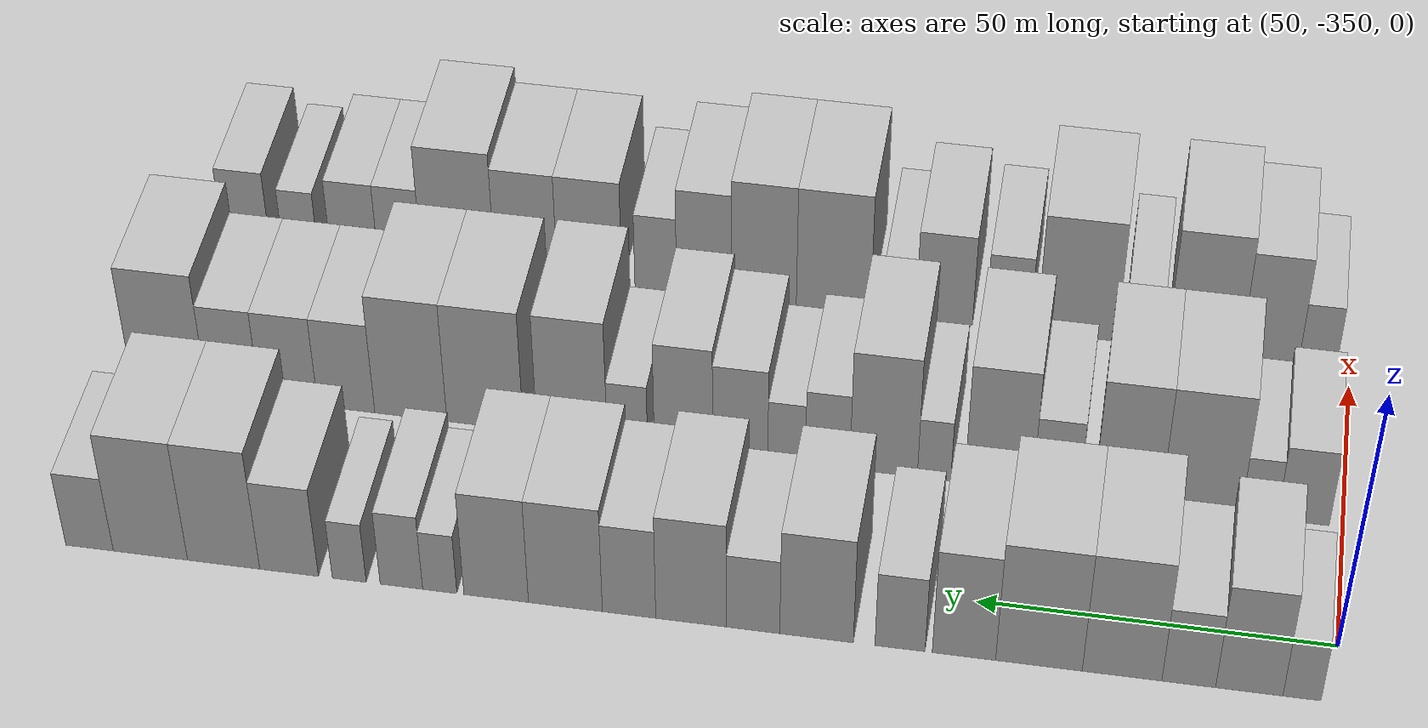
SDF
<sdf version="1.6">
 <world name="default">
  <model name="building_1">
   <static>1</static>
   <pose>50.0000 -345.4279 0 0.000000 0.000000 0.000000</pose>
   <link name="link">
    <pose>0 0 6.00 0 0 0</pose>
    <collision name="collision"><geometry><box><size>20.0000 5.1441 12.0000</size></box></geometry></collision>
    <visual name="visual">
     <cast_shadows>0</cast_shadows>
     <geometry><box><size>20.0000 5.1441 12.0000</size></box></geometry>
     <material>
      <script>
       <uri>model://HANNAS_wall/materials/scripts</uri>
       <uri>model://HANNAS_wall/materials/textures</uri>
       <name>vrc/HANNAS_wall</name>
      </script>
     </material>
    </visual>
   </link>
  </model>
  <model name="building_2">
   <static>1</static>
   <pose>50.0000 -338.2973 0 0.000000 0.000000 0.000000</pose>
   <link name="link">
    <pose>0 0 10.50 0 0 0</pose>
    <collision name="collision"><geometry><box><size>20.0000 9.1171 21.0000</size></box></geometry></collision>
    <visual name="visual">
     <cast_shadows>0</cast_shadows>
     <geometry><box><size>20.0000 9.1171 21.0000</size></box></geometry>
     <material>
      <script>
       <uri>model://HANNAS_wall/materials/scripts</uri>
       <uri>model://HANNAS_wall/materials/textures</uri>
       <name>vrc/HANNAS_wall</name>
      </script>
     </material>
    </visual>
   </link>
  </model>
  <model name="building_3">
   <static>1</static>
   <pose>50.0000 -330.0822 0 0.000000 0.000000 0.000000</pose>
   <link name="link">
    <pose>0 0 7.50 0 0 0</pose>
    <collision name="collision"><geometry><box><size>20.0000 7.3132 15.0000</size></box></geometry></collision>
    <visual name="visual">
     <cast_shadows>0</cast_shadows>
     <geometry><box><size>20.0000 7.3132 15.0000</size></box></geometry>
     <material>
      <script>
       <uri>model://HANNAS_wall/materials/scripts</uri>
       <uri>model://HANNAS_wall/materials/textures</uri>
       <name>vrc/HANNAS_wall</name>
      </script>
     </material>
    </visual>
   </link>
  </model>
  <model name="building_4">
   <static>1</static>
   <pose>50.0000 -320.9923 0 0.000000 0.000000 0.000000</pose>
   <link name="link">
    <pose>0 0 12.00 0 0 0</pose>
    <collision name="collision"><geometry><box><size>20.0000 10.8666 24.0000</size></box></geometry></collision>
    <visual name="visual">
     <cast_shadows>0</cast_shadows>
     <geometry><box><size>20.0000 10.8666 24.0000</size></box></geometry>
     <material>
      <script>
       <uri>model://HANNAS_wall/materials/scripts</uri>
       <uri>model://HANNAS_wall/materials/textures</uri>
       <name>vrc/HANNAS_wall</name>
      </script>
     </material>
    </visual>
   </link>
  </model>
  <model name="building_5">
   <static>1</static>
   <pose>50.0000 -309.6062 0 0.000000 0.000000 0.000000</pose>
   <link name="link">
    <pose>0 0 12.00 0 0 0</pose>
    <collision name="collision"><geometry><box><size>20.0000 11.9056 24.0000</size></box></geometry></collision>
    <visual name="visual">
     <cast_shadows>0</cast_shadows>
     <geometry><box><size>20.0000 11.9056 24.0000</size></box></geometry>
     <material>
      <script>
       <uri>model://HANNAS_wall/materials/scripts</uri>
       <uri>model://HANNAS_wall/materials/textures</uri>
       <name>vrc/HANNAS_wall</name>
      </script>
     </material>
    </visual>
   </link>
  </model>
  <model name="building_6">
   <static>1</static>
   <pose>50.0000 -299.2852 0 0.000000 0.000000 0.000000</pose>
   <link name="link">
    <pose>0 0 10.50 0 0 0</pose>
    <collision name="collision"><geometry><box><size>20.0000 8.7364 21.0000</size></box></geometry></collision>
    <visual name="visual">
     <cast_shadows>0</cast_shadows>
     <geometry><box><size>20.0000 8.7364 21.0000</size></box></geometry>
     <material>
      <script>
       <uri>model://HANNAS_wall/materials/scripts</uri>
       <uri>model://HANNAS_wall/materials/textures</uri>
       <name>vrc/HANNAS_wall</name>
      </script>
     </material>
    </visual>
   </link>
  </model>
  <model name="building_7">
   <static>1</static>
   <pose>50.0000 -290.4478 0 0.000000 0.000000 0.000000</pose>
   <link name="link">
    <pose>0 0 7.50 0 0 0</pose>
    <collision name="collision"><geometry><box><size>20.0000 6.9384 15.0000</size></box></geometry></collision>
    <visual name="visual">
     <cast_shadows>0</cast_shadows>
     <geometry><box><size>20.0000 6.9384 15.0000</size></box></geometry>
     <material>
      <script>
       <uri>model://HANNAS_wall/materials/scripts</uri>
       <uri>model://HANNAS_wall/materials/textures</uri>
       <name>vrc/HANNAS_wall</name>
      </script>
     </material>
    </visual>
   </link>
  </model>
  <model name="building_8">
   <static>1</static>
   <pose>50.0000 -278.8510 0 0.000000 0.000000 0.000000</pose>
   <link name="link">
    <pose>0 0 10.50 0 0 0</pose>
    <collision name="collision"><geometry><box><size>20.0000 10.2552 21.0000</size></box></geometry></collision>
    <visual name="visual">
     <cast_shadows>0</cast_shadows>
     <geometry><box><size>20.0000 10.2552 21.0000</size></box></geometry>
     <material>
      <script>
       <uri>model://HANNAS_wall/materials/scripts</uri>
       <uri>model://HANNAS_wall/materials/textures</uri>
       <name>vrc/HANNAS_wall</name>
      </script>
     </material>
    </visual>
   </link>
  </model>
  <model name="building_9">
   <static>1</static>
   <pose>50.0000 -269.9844 0 0.000000 0.000000 0.000000</pose>
   <link name="link">
    <pose>0 0 7.50 0 0 0</pose>
    <collision name="collision"><geometry><box><size>20.0000 7.4780 15.0000</size></box></geometry></collision>
    <visual name="visual">
     <cast_shadows>0</cast_shadows>
     <geometry><box><size>20.0000 7.4780 15.0000</size></box></geometry>
     <material>
      <script>
       <uri>model://HANNAS_wall/materials/scripts</uri>
       <uri>model://HANNAS_wall/materials/textures</uri>
       <name>vrc/HANNAS_wall</name>
      </script>
     </material>
    </visual>
   </link>
  </model>
  <model name="building_10">
   <static>1</static>
   <pose>50.0000 -261.2865 0 0.000000 0.000000 0.000000</pose>
   <link name="link">
    <pose>0 0 10.50 0 0 0</pose>
    <collision name="collision"><geometry><box><size>20.0000 9.9178 21.0000</size></box></geometry></collision>
    <visual name="visual">
     <cast_shadows>0</cast_shadows>
     <geometry><box><size>20.0000 9.9178 21.0000</size></box></geometry>
     <material>
      <script>
       <uri>model://HANNAS_wall/materials/scripts</uri>
       <uri>model://HANNAS_wall/materials/textures</uri>
       <name>vrc/HANNAS_wall</name>
      </script>
     </material>
    </visual>
   </link>
  </model>
  <model name="building_11">
   <static>1</static>
   <pose>50.0000 -252.5657 0 0.000000 0.000000 0.000000</pose>
   <link name="link">
    <pose>0 0 9.00 0 0 0</pose>
    <collision name="collision"><geometry><box><size>20.0000 7.5238 18.0000</size></box></geometry></collision>
    <visual name="visual">
     <cast_shadows>0</cast_shadows>
     <geometry><box><size>20.0000 7.5238 18.0000</size></box></geometry>
     <material>
      <script>
       <uri>model://HANNAS_wall/materials/scripts</uri>
       <uri>model://HANNAS_wall/materials/textures</uri>
       <name>vrc/HANNAS_wall</name>
      </script>
     </material>
    </visual>
   </link>
  </model>
  <model name="building_12">
   <static>1</static>
   <pose>50.0000 -243.5626 0 0.000000 0.000000 0.000000</pose>
   <link name="link">
    <pose>0 0 10.50 0 0 0</pose>
    <collision name="collision"><geometry><box><size>20.0000 10.4824 21.0000</size></box></geometry></collision>
    <visual name="visual">
     <cast_shadows>0</cast_shadows>
     <geometry><box><size>20.0000 10.4824 21.0000</size></box></geometry>
     <material>
      <script>
       <uri>model://HANNAS_wall/materials/scripts</uri>
       <uri>model://HANNAS_wall/materials/textures</uri>
       <name>vrc/HANNAS_wall</name>
      </script>
     </material>
    </visual>
   </link>
  </model>
  <model name="building_13">
   <static>1</static>
   <pose>50.0000 -233.7275 0 0.000000 0.000000 0.000000</pose>
   <link name="link">
    <pose>0 0 10.50 0 0 0</pose>
    <collision name="collision"><geometry><box><size>20.0000 9.1879 21.0000</size></box></geometry></collision>
    <visual name="visual">
     <cast_shadows>0</cast_shadows>
     <geometry><box><size>20.0000 9.1879 21.0000</size></box></geometry>
     <material>
      <script>
       <uri>model://HANNAS_wall/materials/scripts</uri>
       <uri>model://HANNAS_wall/materials/textures</uri>
       <name>vrc/HANNAS_wall</name>
      </script>
     </material>
    </visual>
   </link>
  </model>
  <model name="building_14">
   <static>1</static>
   <pose>50.0000 -225.6845 0 0.000000 0.000000 0.000000</pose>
   <link name="link">
    <pose>0 0 6.00 0 0 0</pose>
    <collision name="collision"><geometry><box><size>20.0000 4.8980 12.0000</size></box></geometry></collision>
    <visual name="visual">
     <cast_shadows>0</cast_shadows>
     <geometry><box><size>20.0000 4.8980 12.0000</size></box></geometry>
     <material>
      <script>
       <uri>model://HANNAS_wall/materials/scripts</uri>
       <uri>model://HANNAS_wall/materials/textures</uri>
       <name>vrc/HANNAS_wall</name>
      </script>
     </material>
    </visual>
   </link>
  </model>
  <model name="building_15">
   <static>1</static>
   <pose>50.0000 -220.1928 0 0.000000 0.000000 0.000000</pose>
   <link name="link">
    <pose>0 0 7.50 0 0 0</pose>
    <collision name="collision"><geometry><box><size>20.0000 6.0856 15.0000</size></box></geometry></collision>
    <visual name="visual">
     <cast_shadows>0</cast_shadows>
     <geometry><box><size>20.0000 6.0856 15.0000</size></box></geometry>
     <material>
      <script>
       <uri>model://HANNAS_wall/materials/scripts</uri>
       <uri>model://HANNAS_wall/materials/textures</uri>
       <name>vrc/HANNAS_wall</name>
      </script>
     </material>
    </visual>
   </link>
  </model>
  <model name="building_16">
   <static>1</static>
   <pose>50.0000 -212.7110 0 0.000000 0.000000 0.000000</pose>
   <link name="link">
    <pose>0 0 6.00 0 0 0</pose>
    <collision name="collision"><geometry><box><size>20.0000 4.8779 12.0000</size></box></geometry></collision>
    <visual name="visual">
     <cast_shadows>0</cast_shadows>
     <geometry><box><size>20.0000 4.8779 12.0000</size></box></geometry>
     <material>
      <script>
       <uri>model://HANNAS_wall/materials/scripts</uri>
       <uri>model://HANNAS_wall/materials/textures</uri>
       <name>vrc/HANNAS_wall</name>
      </script>
     </material>
    </visual>
   </link>
  </model>
  <model name="building_17">
   <static>1</static>
   <pose>50.0000 -204.0332 0 0.000000 0.000000 0.000000</pose>
   <link name="link">
    <pose>0 0 9.00 0 0 0</pose>
    <collision name="collision"><geometry><box><size>20.0000 8.4778 18.0000</size></box></geometry></collision>
    <visual name="visual">
     <cast_shadows>0</cast_shadows>
     <geometry><box><size>20.0000 8.4778 18.0000</size></box></geometry>
     <material>
      <script>
       <uri>model://HANNAS_wall/materials/scripts</uri>
       <uri>model://HANNAS_wall/materials/textures</uri>
       <name>vrc/HANNAS_wall</name>
      </script>
     </material>
    </visual>
   </link>
  </model>
  <model name="building_18">
   <static>1</static>
   <pose>50.0000 -194.5621 0 0.000000 0.000000 0.000000</pose>
   <link name="link">
    <pose>0 0 12.00 0 0 0</pose>
    <collision name="collision"><geometry><box><size>20.0000 10.4643 24.0000</size></box></geometry></collision>
    <visual name="visual">
     <cast_shadows>0</cast_shadows>
     <geometry><box><size>20.0000 10.4643 24.0000</size></box></geometry>
     <material>
      <script>
       <uri>model://HANNAS_wall/materials/scripts</uri>
       <uri>model://HANNAS_wall/materials/textures</uri>
       <name>vrc/HANNAS_wall</name>
      </script>
     </material>
    </visual>
   </link>
  </model>
  <model name="building_19">
   <static>1</static>
   <pose>50.0000 -183.9129 0 0.000000 0.000000 0.000000</pose>
   <link name="link">
    <pose>0 0 12.00 0 0 0</pose>
    <collision name="collision"><geometry><box><size>20.0000 10.8343 24.0000</size></box></geometry></collision>
    <visual name="visual">
     <cast_shadows>0</cast_shadows>
     <geometry><box><size>20.0000 10.8343 24.0000</size></box></geometry>
     <material>
      <script>
       <uri>model://HANNAS_wall/materials/scripts</uri>
       <uri>model://HANNAS_wall/materials/textures</uri>
       <name>vrc/HANNAS_wall</name>
      </script>
     </material>
    </visual>
   </link>
  </model>
  <model name="building_20">
   <static>1</static>
   <pose>50.0000 -175.0289 0 0.000000 0.000000 0.000000</pose>
   <link name="link">
    <pose>0 0 7.50 0 0 0</pose>
    <collision name="collision"><geometry><box><size>20.0000 6.9336 15.0000</size></box></geometry></collision>
    <visual name="visual">
     <cast_shadows>0</cast_shadows>
     <geometry><box><size>20.0000 6.9336 15.0000</size></box></geometry>
     <material>
      <script>
       <uri>model://HANNAS_wall/materials/scripts</uri>
       <uri>model://HANNAS_wall/materials/textures</uri>
       <name>vrc/HANNAS_wall</name>
      </script>
     </material>
    </visual>
   </link>
  </model>
  <model name="building_82">
   <static>1</static>
   <pose>82.0000 -344.3086 0 0.000000 0.000000 0.000000</pose>
   <link name="link">
    <pose>0 0 7.50 0 0 0</pose>
    <collision name="collision"><geometry><box><size>20.0000 7.3829 15.0000</size></box></geometry></collision>
    <visual name="visual">
     <cast_shadows>0</cast_shadows>
     <geometry><box><size>20.0000 7.3829 15.0000</size></box></geometry>
     <material>
      <script>
       <uri>model://HANNAS_wall/materials/scripts</uri>
       <uri>model://HANNAS_wall/materials/textures</uri>
       <name>vrc/HANNAS_wall</name>
      </script>
     </material>
    </visual>
   </link>
  </model>
  <model name="building_83">
   <static>1</static>
   <pose>82.0000 -338.0447 0 0.000000 0.000000 0.000000</pose>
   <link name="link">
    <pose>0 0 6.00 0 0 0</pose>
    <collision name="collision"><geometry><box><size>20.0000 5.1449 12.0000</size></box></geometry></collision>
    <visual name="visual">
     <cast_shadows>0</cast_shadows>
     <geometry><box><size>20.0000 5.1449 12.0000</size></box></geometry>
     <material>
      <script>
       <uri>model://HANNAS_wall/materials/scripts</uri>
       <uri>model://HANNAS_wall/materials/textures</uri>
       <name>vrc/HANNAS_wall</name>
      </script>
     </material>
    </visual>
   </link>
  </model>
  <model name="building_84">
   <static>1</static>
   <pose>82.0000 -329.7671 0 0.000000 0.000000 0.000000</pose>
   <link name="link">
    <pose>0 0 12.00 0 0 0</pose>
    <collision name="collision"><geometry><box><size>20.0000 11.4103 24.0000</size></box></geometry></collision>
    <visual name="visual">
     <cast_shadows>0</cast_shadows>
     <geometry><box><size>20.0000 11.4103 24.0000</size></box></geometry>
     <material>
      <script>
       <uri>model://HANNAS_wall/materials/scripts</uri>
       <uri>model://HANNAS_wall/materials/textures</uri>
       <name>vrc/HANNAS_wall</name>
      </script>
     </material>
    </visual>
   </link>
  </model>
  <model name="building_85">
   <static>1</static>
   <pose>82.0000 -319.2539 0 0.000000 0.000000 0.000000</pose>
   <link name="link">
    <pose>0 0 12.00 0 0 0</pose>
    <collision name="collision"><geometry><box><size>20.0000 9.6162 24.0000</size></box></geometry></collision>
    <visual name="visual">
     <cast_shadows>0</cast_shadows>
     <geometry><box><size>20.0000 9.6162 24.0000</size></box></geometry>
     <material>
      <script>
       <uri>model://HANNAS_wall/materials/scripts</uri>
       <uri>model://HANNAS_wall/materials/textures</uri>
       <name>vrc/HANNAS_wall</name>
      </script>
     </material>
    </visual>
   </link>
  </model>
  <model name="building_86">
   <static>1</static>
   <pose>82.0000 -309.0598 0 0.000000 0.000000 0.000000</pose>
   <link name="link">
    <pose>0 0 7.50 0 0 0</pose>
    <collision name="collision"><geometry><box><size>20.0000 6.7721 15.0000</size></box></geometry></collision>
    <visual name="visual">
     <cast_shadows>0</cast_shadows>
     <geometry><box><size>20.0000 6.7721 15.0000</size></box></geometry>
     <material>
      <script>
       <uri>model://HANNAS_wall/materials/scripts</uri>
       <uri>model://HANNAS_wall/materials/textures</uri>
       <name>vrc/HANNAS_wall</name>
      </script>
     </material>
    </visual>
   </link>
  </model>
  <model name="building_87">
   <static>1</static>
   <pose>82.0000 -300.7603 0 0.000000 0.000000 0.000000</pose>
   <link name="link">
    <pose>0 0 12.00 0 0 0</pose>
    <collision name="collision"><geometry><box><size>20.0000 9.8269 24.0000</size></box></geometry></collision>
    <visual name="visual">
     <cast_shadows>0</cast_shadows>
     <geometry><box><size>20.0000 9.8269 24.0000</size></box></geometry>
     <material>
      <script>
       <uri>model://HANNAS_wall/materials/scripts</uri>
       <uri>model://HANNAS_wall/materials/textures</uri>
       <name>vrc/HANNAS_wall</name>
      </script>
     </material>
    </visual>
   </link>
  </model>
  <model name="building_88">
   <static>1</static>
   <pose>82.0000 -291.4239 0 0.000000 0.000000 0.000000</pose>
   <link name="link">
    <pose>0 0 6.00 0 0 0</pose>
    <collision name="collision"><geometry><box><size>20.0000 4.8460 12.0000</size></box></geometry></collision>
    <visual name="visual">
     <cast_shadows>0</cast_shadows>
     <geometry><box><size>20.0000 4.8460 12.0000</size></box></geometry>
     <material>
      <script>
       <uri>model://HANNAS_wall/materials/scripts</uri>
       <uri>model://HANNAS_wall/materials/textures</uri>
       <name>vrc/HANNAS_wall</name>
      </script>
     </material>
    </visual>
   </link>
  </model>
  <model name="building_89">
   <static>1</static>
   <pose>82.0000 -284.0865 0 0.000000 0.000000 0.000000</pose>
   <link name="link">
    <pose>0 0 12.00 0 0 0</pose>
    <collision name="collision"><geometry><box><size>20.0000 9.8287 24.0000</size></box></geometry></collision>
    <visual name="visual">
     <cast_shadows>0</cast_shadows>
     <geometry><box><size>20.0000 9.8287 24.0000</size></box></geometry>
     <material>
      <script>
       <uri>model://HANNAS_wall/materials/scripts</uri>
       <uri>model://HANNAS_wall/materials/textures</uri>
       <name>vrc/HANNAS_wall</name>
      </script>
     </material>
    </visual>
   </link>
  </model>
  <model name="building_90">
   <static>1</static>
   <pose>82.0000 -275.9229 0 0.000000 0.000000 0.000000</pose>
   <link name="link">
    <pose>0 0 7.50 0 0 0</pose>
    <collision name="collision"><geometry><box><size>20.0000 6.4985 15.0000</size></box></geometry></collision>
    <visual name="visual">
     <cast_shadows>0</cast_shadows>
     <geometry><box><size>20.0000 6.4985 15.0000</size></box></geometry>
     <material>
      <script>
       <uri>model://HANNAS_wall/materials/scripts</uri>
       <uri>model://HANNAS_wall/materials/textures</uri>
       <name>vrc/HANNAS_wall</name>
      </script>
     </material>
    </visual>
   </link>
  </model>
  <model name="building_91">
   <static>1</static>
   <pose>82.0000 -269.9302 0 0.000000 0.000000 0.000000</pose>
   <link name="link">
    <pose>0 0 6.00 0 0 0</pose>
    <collision name="collision"><geometry><box><size>20.0000 5.4868 12.0000</size></box></geometry></collision>
    <visual name="visual">
     <cast_shadows>0</cast_shadows>
     <geometry><box><size>20.0000 5.4868 12.0000</size></box></geometry>
     <material>
      <script>
       <uri>model://HANNAS_wall/materials/scripts</uri>
       <uri>model://HANNAS_wall/materials/textures</uri>
       <name>vrc/HANNAS_wall</name>
      </script>
     </material>
    </visual>
   </link>
  </model>
  <model name="building_92">
   <static>1</static>
   <pose>82.0000 -263.1394 0 0.000000 0.000000 0.000000</pose>
   <link name="link">
    <pose>0 0 9.00 0 0 0</pose>
    <collision name="collision"><geometry><box><size>20.0000 8.0948 18.0000</size></box></geometry></collision>
    <visual name="visual">
     <cast_shadows>0</cast_shadows>
     <geometry><box><size>20.0000 8.0948 18.0000</size></box></geometry>
     <material>
      <script>
       <uri>model://HANNAS_wall/materials/scripts</uri>
       <uri>model://HANNAS_wall/materials/textures</uri>
       <name>vrc/HANNAS_wall</name>
      </script>
     </material>
    </visual>
   </link>
  </model>
  <model name="building_93">
   <static>1</static>
   <pose>82.0000 -254.7932 0 0.000000 0.000000 0.000000</pose>
   <link name="link">
    <pose>0 0 10.50 0 0 0</pose>
    <collision name="collision"><geometry><box><size>20.0000 8.5977 21.0000</size></box></geometry></collision>
    <visual name="visual">
     <cast_shadows>0</cast_shadows>
     <geometry><box><size>20.0000 8.5977 21.0000</size></box></geometry>
     <material>
      <script>
       <uri>model://HANNAS_wall/materials/scripts</uri>
       <uri>model://HANNAS_wall/materials/textures</uri>
       <name>vrc/HANNAS_wall</name>
      </script>
     </material>
    </visual>
   </link>
  </model>
  <model name="building_94">
   <static>1</static>
   <pose>82.0000 -246.5058 0 0.000000 0.000000 0.000000</pose>
   <link name="link">
    <pose>0 0 6.00 0 0 0</pose>
    <collision name="collision"><geometry><box><size>20.0000 5.9772 12.0000</size></box></geometry></collision>
    <visual name="visual">
     <cast_shadows>0</cast_shadows>
     <geometry><box><size>20.0000 5.9772 12.0000</size></box></geometry>
     <material>
      <script>
       <uri>model://HANNAS_wall/materials/scripts</uri>
       <uri>model://HANNAS_wall/materials/textures</uri>
       <name>vrc/HANNAS_wall</name>
      </script>
     </material>
    </visual>
   </link>
  </model>
  <model name="building_95">
   <static>1</static>
   <pose>82.0000 -238.2991 0 0.000000 0.000000 0.000000</pose>
   <link name="link">
    <pose>0 0 12.00 0 0 0</pose>
    <collision name="collision"><geometry><box><size>20.0000 10.4362 24.0000</size></box></geometry></collision>
    <visual name="visual">
     <cast_shadows>0</cast_shadows>
     <geometry><box><size>20.0000 10.4362 24.0000</size></box></geometry>
     <material>
      <script>
       <uri>model://HANNAS_wall/materials/scripts</uri>
       <uri>model://HANNAS_wall/materials/textures</uri>
       <name>vrc/HANNAS_wall</name>
      </script>
     </material>
    </visual>
   </link>
  </model>
  <model name="building_96">
   <static>1</static>
   <pose>82.0000 -225.3558 0 0.000000 0.000000 0.000000</pose>
   <link name="link">
    <pose>0 0 12.00 0 0 0</pose>
    <collision name="collision"><geometry><box><size>20.0000 11.4505 24.0000</size></box></geometry></collision>
    <visual name="visual">
     <cast_shadows>0</cast_shadows>
     <geometry><box><size>20.0000 11.4505 24.0000</size></box></geometry>
     <material>
      <script>
       <uri>model://HANNAS_wall/materials/scripts</uri>
       <uri>model://HANNAS_wall/materials/textures</uri>
       <name>vrc/HANNAS_wall</name>
      </script>
     </material>
    </visual>
   </link>
  </model>
  <model name="building_97">
   <static>1</static>
   <pose>82.0000 -214.2096 0 0.000000 0.000000 0.000000</pose>
   <link name="link">
    <pose>0 0 12.00 0 0 0</pose>
    <collision name="collision"><geometry><box><size>20.0000 10.8418 24.0000</size></box></geometry></collision>
    <visual name="visual">
     <cast_shadows>0</cast_shadows>
     <geometry><box><size>20.0000 10.8418 24.0000</size></box></geometry>
     <material>
      <script>
       <uri>model://HANNAS_wall/materials/scripts</uri>
       <uri>model://HANNAS_wall/materials/textures</uri>
       <name>vrc/HANNAS_wall</name>
      </script>
     </material>
    </visual>
   </link>
  </model>
  <model name="building_98">
   <static>1</static>
   <pose>82.0000 -204.5007 0 0.000000 0.000000 0.000000</pose>
   <link name="link">
    <pose>0 0 9.00 0 0 0</pose>
    <collision name="collision"><geometry><box><size>20.0000 8.5760 18.0000</size></box></geometry></collision>
    <visual name="visual">
     <cast_shadows>0</cast_shadows>
     <geometry><box><size>20.0000 8.5760 18.0000</size></box></geometry>
     <material>
      <script>
       <uri>model://HANNAS_wall/materials/scripts</uri>
       <uri>model://HANNAS_wall/materials/textures</uri>
       <name>vrc/HANNAS_wall</name>
      </script>
     </material>
    </visual>
   </link>
  </model>
  <model name="building_99">
   <static>1</static>
   <pose>82.0000 -195.8501 0 0.000000 0.000000 0.000000</pose>
   <link name="link">
    <pose>0 0 9.00 0 0 0</pose>
    <collision name="collision"><geometry><box><size>20.0000 8.7252 18.0000</size></box></geometry></collision>
    <visual name="visual">
     <cast_shadows>0</cast_shadows>
     <geometry><box><size>20.0000 8.7252 18.0000</size></box></geometry>
     <material>
      <script>
       <uri>model://HANNAS_wall/materials/scripts</uri>
       <uri>model://HANNAS_wall/materials/textures</uri>
       <name>vrc/HANNAS_wall</name>
      </script>
     </material>
    </visual>
   </link>
  </model>
  <model name="building_100">
   <static>1</static>
   <pose>82.0000 -187.4548 0 0.000000 0.000000 0.000000</pose>
   <link name="link">
    <pose>0 0 9.00 0 0 0</pose>
    <collision name="collision"><geometry><box><size>20.0000 8.0653 18.0000</size></box></geometry></collision>
    <visual name="visual">
     <cast_shadows>0</cast_shadows>
     <geometry><box><size>20.0000 8.0653 18.0000</size></box></geometry>
     <material>
      <script>
       <uri>model://HANNAS_wall/materials/scripts</uri>
       <uri>model://HANNAS_wall/materials/textures</uri>
       <name>vrc/HANNAS_wall</name>
      </script>
     </material>
    </visual>
   </link>
  </model>
  <model name="building_101">
   <static>1</static>
   <pose>82.0000 -177.7040 0 0.000000 0.000000 0.000000</pose>
   <link name="link">
    <pose>0 0 12.00 0 0 0</pose>
    <collision name="collision"><geometry><box><size>20.0000 11.4364 24.0000</size></box></geometry></collision>
    <visual name="visual">
     <cast_shadows>0</cast_shadows>
     <geometry><box><size>20.0000 11.4364 24.0000</size></box></geometry>
     <material>
      <script>
       <uri>model://HANNAS_wall/materials/scripts</uri>
       <uri>model://HANNAS_wall/materials/textures</uri>
       <name>vrc/HANNAS_wall</name>
      </script>
     </material>
    </visual>
   </link>
  </model>
  <model name="building_158">
   <static>1</static>
   <pose>114.0000 -345.2093 0 0.000000 0.000000 0.000000</pose>
   <link name="link">
    <pose>0 0 6.00 0 0 0</pose>
    <collision name="collision"><geometry><box><size>20.0000 5.5814 12.0000</size></box></geometry></collision>
    <visual name="visual">
     <cast_shadows>0</cast_shadows>
     <geometry><box><size>20.0000 5.5814 12.0000</size></box></geometry>
     <material>
      <script>
       <uri>model://HANNAS_wall/materials/scripts</uri>
       <uri>model://HANNAS_wall/materials/textures</uri>
       <name>vrc/HANNAS_wall</name>
      </script>
     </material>
    </visual>
   </link>
  </model>
  <model name="building_159">
   <static>1</static>
   <pose>114.0000 -338.0819 0 0.000000 0.000000 0.000000</pose>
   <link name="link">
    <pose>0 0 10.50 0 0 0</pose>
    <collision name="collision"><geometry><box><size>20.0000 8.6734 21.0000</size></box></geometry></collision>
    <visual name="visual">
     <cast_shadows>0</cast_shadows>
     <geometry><box><size>20.0000 8.6734 21.0000</size></box></geometry>
     <material>
      <script>
       <uri>model://HANNAS_wall/materials/scripts</uri>
       <uri>model://HANNAS_wall/materials/textures</uri>
       <name>vrc/HANNAS_wall</name>
      </script>
     </material>
    </visual>
   </link>
  </model>
  <model name="building_160">
   <static>1</static>
   <pose>114.0000 -328.2507 0 0.000000 0.000000 0.000000</pose>
   <link name="link">
    <pose>0 0 12.00 0 0 0</pose>
    <collision name="collision"><geometry><box><size>20.0000 10.9888 24.0000</size></box></geometry></collision>
    <visual name="visual">
     <cast_shadows>0</cast_shadows>
     <geometry><box><size>20.0000 10.9888 24.0000</size></box></geometry>
     <material>
      <script>
       <uri>model://HANNAS_wall/materials/scripts</uri>
       <uri>model://HANNAS_wall/materials/textures</uri>
       <name>vrc/HANNAS_wall</name>
      </script>
     </material>
    </visual>
   </link>
  </model>
  <model name="building_161">
   <static>1</static>
   <pose>114.0000 -318.9845 0 0.000000 0.000000 0.000000</pose>
   <link name="link">
    <pose>0 0 6.00 0 0 0</pose>
    <collision name="collision"><geometry><box><size>20.0000 5.5436 12.0000</size></box></geometry></collision>
    <visual name="visual">
     <cast_shadows>0</cast_shadows>
     <geometry><box><size>20.0000 5.5436 12.0000</size></box></geometry>
     <material>
      <script>
       <uri>model://HANNAS_wall/materials/scripts</uri>
       <uri>model://HANNAS_wall/materials/textures</uri>
       <name>vrc/HANNAS_wall</name>
      </script>
     </material>
    </visual>
   </link>
  </model>
  <model name="building_162">
   <static>1</static>
   <pose>114.0000 -309.2181 0 0.000000 0.000000 0.000000</pose>
   <link name="link">
    <pose>0 0 12.00 0 0 0</pose>
    <collision name="collision"><geometry><box><size>20.0000 11.9893 24.0000</size></box></geometry></collision>
    <visual name="visual">
     <cast_shadows>0</cast_shadows>
     <geometry><box><size>20.0000 11.9893 24.0000</size></box></geometry>
     <material>
      <script>
       <uri>model://HANNAS_wall/materials/scripts</uri>
       <uri>model://HANNAS_wall/materials/textures</uri>
       <name>vrc/HANNAS_wall</name>
      </script>
     </material>
    </visual>
   </link>
  </model>
  <model name="building_163">
   <static>1</static>
   <pose>114.0000 -298.8761 0 0.000000 0.000000 0.000000</pose>
   <link name="link">
    <pose>0 0 7.50 0 0 0</pose>
    <collision name="collision"><geometry><box><size>20.0000 6.6948 15.0000</size></box></geometry></collision>
    <visual name="visual">
     <cast_shadows>0</cast_shadows>
     <geometry><box><size>20.0000 6.6948 15.0000</size></box></geometry>
     <material>
      <script>
       <uri>model://HANNAS_wall/materials/scripts</uri>
       <uri>model://HANNAS_wall/materials/textures</uri>
       <name>vrc/HANNAS_wall</name>
      </script>
     </material>
    </visual>
   </link>
  </model>
  <model name="building_164">
   <static>1</static>
   <pose>114.0000 -289.2217 0 0.000000 0.000000 0.000000</pose>
   <link name="link">
    <pose>0 0 9.00 0 0 0</pose>
    <collision name="collision"><geometry><box><size>20.0000 8.6140 18.0000</size></box></geometry></collision>
    <visual name="visual">
     <cast_shadows>0</cast_shadows>
     <geometry><box><size>20.0000 8.6140 18.0000</size></box></geometry>
     <material>
      <script>
       <uri>model://HANNAS_wall/materials/scripts</uri>
       <uri>model://HANNAS_wall/materials/textures</uri>
       <name>vrc/HANNAS_wall</name>
      </script>
     </material>
    </visual>
   </link>
  </model>
  <model name="building_165">
   <static>1</static>
   <pose>114.0000 -282.4661 0 0.000000 0.000000 0.000000</pose>
   <link name="link">
    <pose>0 0 6.00 0 0 0</pose>
    <collision name="collision"><geometry><box><size>20.0000 4.8972 12.0000</size></box></geometry></collision>
    <visual name="visual">
     <cast_shadows>0</cast_shadows>
     <geometry><box><size>20.0000 4.8972 12.0000</size></box></geometry>
     <material>
      <script>
       <uri>model://HANNAS_wall/materials/scripts</uri>
       <uri>model://HANNAS_wall/materials/textures</uri>
       <name>vrc/HANNAS_wall</name>
      </script>
     </material>
    </visual>
   </link>
  </model>
  <model name="building_166">
   <static>1</static>
   <pose>114.0000 -272.3563 0 0.000000 0.000000 0.000000</pose>
   <link name="link">
    <pose>0 0 12.00 0 0 0</pose>
    <collision name="collision"><geometry><box><size>20.0000 11.3224 24.0000</size></box></geometry></collision>
    <visual name="visual">
     <cast_shadows>0</cast_shadows>
     <geometry><box><size>20.0000 11.3224 24.0000</size></box></geometry>
     <material>
      <script>
       <uri>model://HANNAS_wall/materials/scripts</uri>
       <uri>model://HANNAS_wall/materials/textures</uri>
       <name>vrc/HANNAS_wall</name>
      </script>
     </material>
    </visual>
   </link>
  </model>
  <model name="building_167">
   <static>1</static>
   <pose>114.0000 -261.7126 0 0.000000 0.000000 0.000000</pose>
   <link name="link">
    <pose>0 0 12.00 0 0 0</pose>
    <collision name="collision"><geometry><box><size>20.0000 9.9649 24.0000</size></box></geometry></collision>
    <visual name="visual">
     <cast_shadows>0</cast_shadows>
     <geometry><box><size>20.0000 9.9649 24.0000</size></box></geometry>
     <material>
      <script>
       <uri>model://HANNAS_wall/materials/scripts</uri>
       <uri>model://HANNAS_wall/materials/textures</uri>
       <name>vrc/HANNAS_wall</name>
      </script>
     </material>
    </visual>
   </link>
  </model>
  <model name="building_168">
   <static>1</static>
   <pose>114.0000 -252.5070 0 0.000000 0.000000 0.000000</pose>
   <link name="link">
    <pose>0 0 10.50 0 0 0</pose>
    <collision name="collision"><geometry><box><size>20.0000 8.4463 21.0000</size></box></geometry></collision>
    <visual name="visual">
     <cast_shadows>0</cast_shadows>
     <geometry><box><size>20.0000 8.4463 21.0000</size></box></geometry>
     <material>
      <script>
       <uri>model://HANNAS_wall/materials/scripts</uri>
       <uri>model://HANNAS_wall/materials/textures</uri>
       <name>vrc/HANNAS_wall</name>
      </script>
     </material>
    </visual>
   </link>
  </model>
  <model name="building_169">
   <static>1</static>
   <pose>114.0000 -245.0678 0 0.000000 0.000000 0.000000</pose>
   <link name="link">
    <pose>0 0 7.50 0 0 0</pose>
    <collision name="collision"><geometry><box><size>20.0000 6.4321 15.0000</size></box></geometry></collision>
    <visual name="visual">
     <cast_shadows>0</cast_shadows>
     <geometry><box><size>20.0000 6.4321 15.0000</size></box></geometry>
     <material>
      <script>
       <uri>model://HANNAS_wall/materials/scripts</uri>
       <uri>model://HANNAS_wall/materials/textures</uri>
       <name>vrc/HANNAS_wall</name>
      </script>
     </material>
    </visual>
   </link>
  </model>
  <model name="building_170">
   <static>1</static>
   <pose>114.0000 -234.8224 0 0.000000 0.000000 0.000000</pose>
   <link name="link">
    <pose>0 0 10.50 0 0 0</pose>
    <collision name="collision"><geometry><box><size>20.0000 10.0587 21.0000</size></box></geometry></collision>
    <visual name="visual">
     <cast_shadows>0</cast_shadows>
     <geometry><box><size>20.0000 10.0587 21.0000</size></box></geometry>
     <material>
      <script>
       <uri>model://HANNAS_wall/materials/scripts</uri>
       <uri>model://HANNAS_wall/materials/textures</uri>
       <name>vrc/HANNAS_wall</name>
      </script>
     </material>
    </visual>
   </link>
  </model>
  <model name="building_171">
   <static>1</static>
   <pose>114.0000 -224.9447 0 0.000000 0.000000 0.000000</pose>
   <link name="link">
    <pose>0 0 10.50 0 0 0</pose>
    <collision name="collision"><geometry><box><size>20.0000 9.6966 21.0000</size></box></geometry></collision>
    <visual name="visual">
     <cast_shadows>0</cast_shadows>
     <geometry><box><size>20.0000 9.6966 21.0000</size></box></geometry>
     <material>
      <script>
       <uri>model://HANNAS_wall/materials/scripts</uri>
       <uri>model://HANNAS_wall/materials/textures</uri>
       <name>vrc/HANNAS_wall</name>
      </script>
     </material>
    </visual>
   </link>
  </model>
  <model name="building_172">
   <static>1</static>
   <pose>114.0000 -214.3386 0 0.000000 0.000000 0.000000</pose>
   <link name="link">
    <pose>0 0 12.00 0 0 0</pose>
    <collision name="collision"><geometry><box><size>20.0000 11.5154 24.0000</size></box></geometry></collision>
    <visual name="visual">
     <cast_shadows>0</cast_shadows>
     <geometry><box><size>20.0000 11.5154 24.0000</size></box></geometry>
     <material>
      <script>
       <uri>model://HANNAS_wall/materials/scripts</uri>
       <uri>model://HANNAS_wall/materials/textures</uri>
       <name>vrc/HANNAS_wall</name>
      </script>
     </material>
    </visual>
   </link>
  </model>
  <model name="building_173">
   <static>1</static>
   <pose>114.0000 -205.1383 0 0.000000 0.000000 0.000000</pose>
   <link name="link">
    <pose>0 0 7.50 0 0 0</pose>
    <collision name="collision"><geometry><box><size>20.0000 6.8853 15.0000</size></box></geometry></collision>
    <visual name="visual">
     <cast_shadows>0</cast_shadows>
     <geometry><box><size>20.0000 6.8853 15.0000</size></box></geometry>
     <material>
      <script>
       <uri>model://HANNAS_wall/materials/scripts</uri>
       <uri>model://HANNAS_wall/materials/textures</uri>
       <name>vrc/HANNAS_wall</name>
      </script>
     </material>
    </visual>
   </link>
  </model>
  <model name="building_174">
   <static>1</static>
   <pose>114.0000 -197.9667 0 0.000000 0.000000 0.000000</pose>
   <link name="link">
    <pose>0 0 7.50 0 0 0</pose>
    <collision name="collision"><geometry><box><size>20.0000 7.4578 15.0000</size></box></geometry></collision>
    <visual name="visual">
     <cast_shadows>0</cast_shadows>
     <geometry><box><size>20.0000 7.4578 15.0000</size></box></geometry>
     <material>
      <script>
       <uri>model://HANNAS_wall/materials/scripts</uri>
       <uri>model://HANNAS_wall/materials/textures</uri>
       <name>vrc/HANNAS_wall</name>
      </script>
     </material>
    </visual>
   </link>
  </model>
  <model name="building_175">
   <static>1</static>
   <pose>114.0000 -189.4544 0 0.000000 0.000000 0.000000</pose>
   <link name="link">
    <pose>0 0 6.00 0 0 0</pose>
    <collision name="collision"><geometry><box><size>20.0000 5.5668 12.0000</size></box></geometry></collision>
    <visual name="visual">
     <cast_shadows>0</cast_shadows>
     <geometry><box><size>20.0000 5.5668 12.0000</size></box></geometry>
     <material>
      <script>
       <uri>model://HANNAS_wall/materials/scripts</uri>
       <uri>model://HANNAS_wall/materials/textures</uri>
       <name>vrc/HANNAS_wall</name>
      </script>
     </material>
    </visual>
   </link>
  </model>
  <model name="building_176">
   <static>1</static>
   <pose>114.0000 -180.9356 0 0.000000 0.000000 0.000000</pose>
   <link name="link">
    <pose>0 0 7.50 0 0 0</pose>
    <collision name="collision"><geometry><box><size>20.0000 7.4708 15.0000</size></box></geometry></collision>
    <visual name="visual">
     <cast_shadows>0</cast_shadows>
     <geometry><box><size>20.0000 7.4708 15.0000</size></box></geometry>
     <material>
      <script>
       <uri>model://HANNAS_wall/materials/scripts</uri>
       <uri>model://HANNAS_wall/materials/textures</uri>
       <name>vrc/HANNAS_wall</name>
      </script>
     </material>
    </visual>
   </link>
  </model>
 </world>
</sdf>
